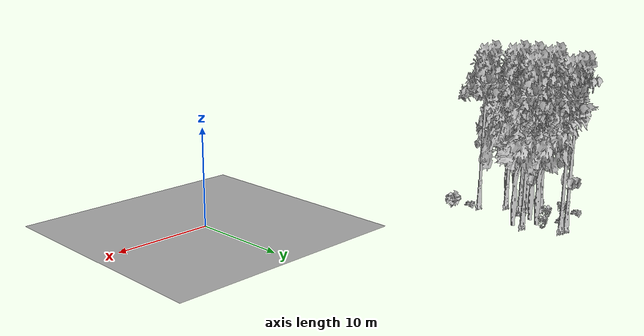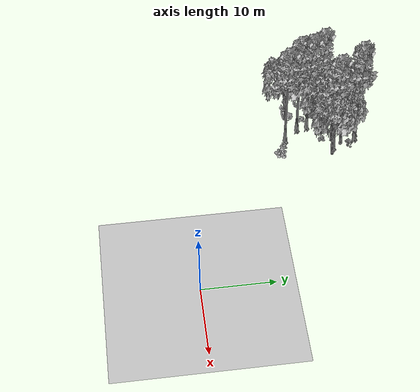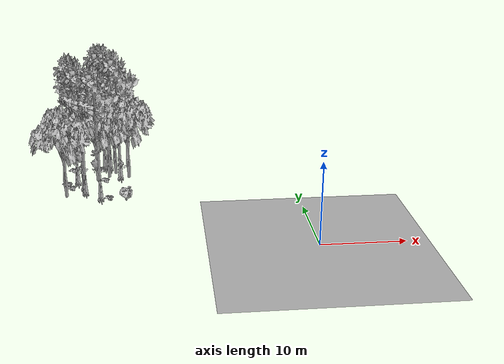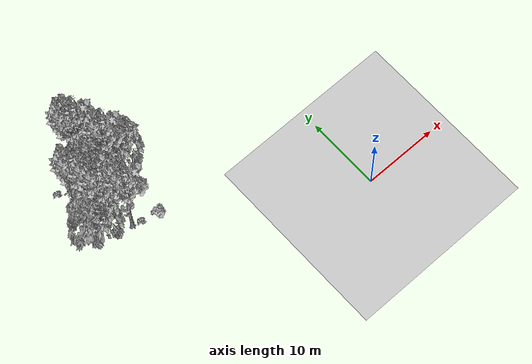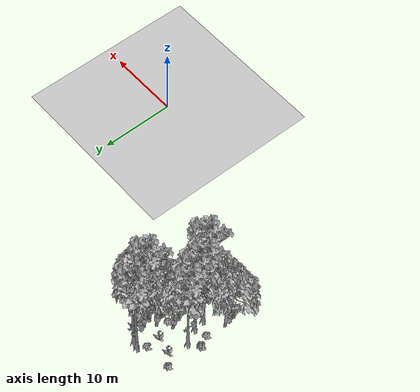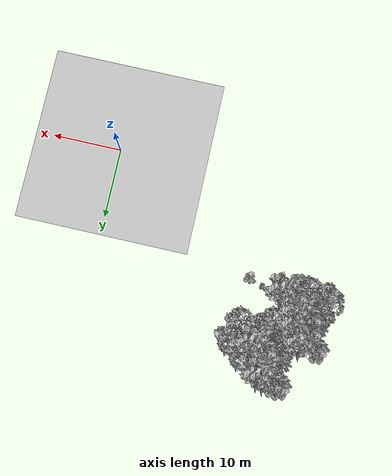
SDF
<sdf version="1.7">
 <world name="default">
  <model name="ground_plane">
   <static>1</static>
   <link name="link">
    <collision name="collision">
     <pose>-50 0 0 0 -0 0</pose>
     <geometry><plane><normal>0 0 1</normal><size>80 80</size></plane></geometry>
     <surface><contact><ode><min_depth>0.01</min_depth><max_vel>0</max_vel></ode></contact></surface>
    </collision>
    <visual name="grass">
     <cast_shadows>0</cast_shadows>
     <geometry>
      <mesh>
       <scale>0.46714285714285714 0.46714285714285714 0.1</scale>
       <uri>file://grass_plane/meshes/grass_plane.dae</uri>
      </mesh>
     </geometry>
    </visual>
   </link>
  </model>
  <model name="Tree 82">
   <static>1</static>
   <pose>-23.60000368284799 22.907310739466723 0 1.57079 -0 0</pose>
   <link name="link">
    <collision name="collision">
     <geometry><mesh><scale>3.5 5 3.5</scale><uri>model://tree_2/meshes/tree_2.obj</uri></mesh></geometry>
    </collision>
    <visual name="visual">
     <geometry><mesh><scale>3.5 5 3.5</scale><uri>model://tree_2/meshes/tree_2.obj</uri></mesh></geometry>
    </visual>
   </link>
  </model>
  <model name="Tree 83">
   <static>1</static>
   <pose>-27.52057354692682 18.612210531335556 0 1.57079 -0 0</pose>
   <link name="link">
    <collision name="collision">
     <geometry><mesh><scale>3.5 5 3.5</scale><uri>model://tree_9/meshes/tree_9.obj</uri></mesh></geometry>
    </collision>
    <visual name="visual">
     <geometry><mesh><scale>3.5 5 3.5</scale><uri>model://tree_9/meshes/tree_9.obj</uri></mesh></geometry>
    </visual>
   </link>
  </model>
  <model name="Tree 85">
   <static>1</static>
   <pose>-25.887990517821386 20.45984349056372 0 1.57079 -0 0</pose>
   <link name="link">
    <collision name="collision">
     <geometry><mesh><scale>3.5 5 3.5</scale><uri>model://tree_2/meshes/tree_2.obj</uri></mesh></geometry>
    </collision>
    <visual name="visual">
     <geometry><mesh><scale>3.5 5 3.5</scale><uri>model://tree_2/meshes/tree_2.obj</uri></mesh></geometry>
    </visual>
   </link>
  </model>
  <model name="Tree 149">
   <static>1</static>
   <pose>-28.477981547906218 20.479283312275328 0 1.57079 -0 0</pose>
   <link name="link">
    <collision name="collision">
     <geometry><mesh><scale>3.5 5 3.5</scale><uri>model://tree_9/meshes/tree_9.obj</uri></mesh></geometry>
    </collision>
    <visual name="visual">
     <geometry><mesh><scale>3.5 5 3.5</scale><uri>model://tree_9/meshes/tree_9.obj</uri></mesh></geometry>
    </visual>
   </link>
  </model>
  <model name="Tree 211">
   <static>1</static>
   <pose>-25.125109178131687 25.325307535147488 0 1.57079 -0 0</pose>
   <link name="link">
    <collision name="collision">
     <geometry><mesh><scale>3.5 5 3.5</scale><uri>model://tree_9/meshes/tree_9.obj</uri></mesh></geometry>
    </collision>
    <visual name="visual">
     <geometry><mesh><scale>3.5 5 3.5</scale><uri>model://tree_9/meshes/tree_9.obj</uri></mesh></geometry>
    </visual>
   </link>
  </model>
  <model name="Tree 218">
   <static>1</static>
   <pose>-29.566842134518858 15.620354133656498 0 1.57079 -0 0</pose>
   <link name="link">
    <collision name="collision">
     <geometry><mesh><scale>3.5 5 3.5</scale><uri>model://tree_2/meshes/tree_2.obj</uri></mesh></geometry>
    </collision>
    <visual name="visual">
     <geometry><mesh><scale>3.5 5 3.5</scale><uri>model://tree_2/meshes/tree_2.obj</uri></mesh></geometry>
    </visual>
   </link>
  </model>
  <model name="Tree 297">
   <static>1</static>
   <pose>-24.43351000046244 21.687650565385795 0 1.57079 -0 0</pose>
   <link name="link">
    <collision name="collision">
     <geometry><mesh><scale>3.5 5 3.5</scale><uri>model://tree_2/meshes/tree_2.obj</uri></mesh></geometry>
    </collision>
    <visual name="visual">
     <geometry><mesh><scale>3.5 5 3.5</scale><uri>model://tree_2/meshes/tree_2.obj</uri></mesh></geometry>
    </visual>
   </link>
  </model>
  <model name="Tree 323">
   <static>1</static>
   <pose>-25.161118192035325 15.060328880033758 0 1.57079 -0 0</pose>
   <link name="link">
    <collision name="collision">
     <geometry><mesh><scale>3.5 5 3.5</scale><uri>model://tree_9/meshes/tree_9.obj</uri></mesh></geometry>
    </collision>
    <visual name="visual">
     <geometry><mesh><scale>3.5 5 3.5</scale><uri>model://tree_9/meshes/tree_9.obj</uri></mesh></geometry>
    </visual>
   </link>
  </model>
  <model name="Tree 386">
   <static>1</static>
   <pose>-24.362458534090074 25.165617462280338 0 1.57079 -0 0</pose>
   <link name="link">
    <collision name="collision">
     <geometry><mesh><scale>3.5 5 3.5</scale><uri>model://tree_9/meshes/tree_9.obj</uri></mesh></geometry>
    </collision>
    <visual name="visual">
     <geometry><mesh><scale>3.5 5 3.5</scale><uri>model://tree_9/meshes/tree_9.obj</uri></mesh></geometry>
    </visual>
   </link>
  </model>
  <model name="Tree 395">
   <static>1</static>
   <pose>-21.789345784298405 21.354413079044562 0 1.57079 -0 0</pose>
   <link name="link">
    <collision name="collision">
     <geometry><mesh><scale>3.5 5 3.5</scale><uri>model://tree_2/meshes/tree_2.obj</uri></mesh></geometry>
    </collision>
    <visual name="visual">
     <geometry><mesh><scale>3.5 5 3.5</scale><uri>model://tree_2/meshes/tree_2.obj</uri></mesh></geometry>
    </visual>
   </link>
  </model>
  <model name="Tree 473">
   <static>1</static>
   <pose>-27.228537477405162 17.110829099585267 0 1.57079 -0 0</pose>
   <link name="link">
    <collision name="collision">
     <geometry><mesh><scale>3.5 5 3.5</scale><uri>model://tree_9/meshes/tree_9.obj</uri></mesh></geometry>
    </collision>
    <visual name="visual">
     <geometry><mesh><scale>3.5 5 3.5</scale><uri>model://tree_9/meshes/tree_9.obj</uri></mesh></geometry>
    </visual>
   </link>
  </model>
  <model name="Tree 536">
   <static>1</static>
   <pose>-22.869270382671104 21.76674939172741 0 1.57079 -0 0</pose>
   <link name="link">
    <collision name="collision">
     <geometry><mesh><scale>3.5 5 3.5</scale><uri>model://tree_9/meshes/tree_9.obj</uri></mesh></geometry>
    </collision>
    <visual name="visual">
     <geometry><mesh><scale>3.5 5 3.5</scale><uri>model://tree_9/meshes/tree_9.obj</uri></mesh></geometry>
    </visual>
   </link>
  </model>
  <model name="Bush 5">
   <static>1</static>
   <pose>-29.123226535051074 18.118331162031858 0 1.57079 -0 0</pose>
   <link name="link">
    <collision name="collision">
     <geometry><mesh><scale>2 2 2</scale><uri>model://bush_2/meshes/bush_2.obj</uri></mesh></geometry>
     <surface><contact><collide_without_contact>false</collide_without_contact></contact></surface>
    </collision>
    <visual name="visual">
     <geometry><mesh><scale>2 2 2</scale><uri>model://bush_2/meshes/bush_2.obj</uri></mesh></geometry>
    </visual>
   </link>
  </model>
  <model name="Bush 47">
   <static>1</static>
   <pose>-24.855161658986233 20.366902718795473 0 1.57079 -0 0</pose>
   <link name="link">
    <collision name="collision">
     <geometry><mesh><scale>2 2 2</scale><uri>model://bush_2/meshes/bush_2.obj</uri></mesh></geometry>
     <surface><contact><collide_without_contact>false</collide_without_contact></contact></surface>
    </collision>
    <visual name="visual">
     <geometry><mesh><scale>2 2 2</scale><uri>model://bush_2/meshes/bush_2.obj</uri></mesh></geometry>
    </visual>
   </link>
  </model>
  <model name="Bush 115">
   <static>1</static>
   <pose>-29.37981597840611 24.111767978246377 0 1.57079 -0 0</pose>
   <link name="link">
    <collision name="collision">
     <geometry><mesh><scale>2 2 2</scale><uri>model://bush_2/meshes/bush_2.obj</uri></mesh></geometry>
     <surface><contact><collide_without_contact>false</collide_without_contact></contact></surface>
    </collision>
    <visual name="visual">
     <geometry><mesh><scale>2 2 2</scale><uri>model://bush_2/meshes/bush_2.obj</uri></mesh></geometry>
    </visual>
   </link>
  </model>
  <model name="Bush 221">
   <static>1</static>
   <pose>-29.848842694121526 19.551725764273122 0 1.57079 -0 0</pose>
   <link name="link">
    <collision name="collision">
     <geometry><mesh><scale>2 2 2</scale><uri>model://bush_2/meshes/bush_2.obj</uri></mesh></geometry>
     <surface><contact><collide_without_contact>false</collide_without_contact></contact></surface>
    </collision>
    <visual name="visual">
     <geometry><mesh><scale>2 2 2</scale><uri>model://bush_2/meshes/bush_2.obj</uri></mesh></geometry>
    </visual>
   </link>
  </model>
  <model name="Bush 243">
   <static>1</static>
   <pose>-22.93052660546661 23.932132478037282 0 1.57079 -0 0</pose>
   <link name="link">
    <collision name="collision">
     <geometry><mesh><scale>2 2 2</scale><uri>model://bush_4/meshes/bush_4.obj</uri></mesh></geometry>
     <surface><contact><collide_without_contact>false</collide_without_contact></contact></surface>
    </collision>
    <visual name="visual">
     <geometry><mesh><scale>2 2 2</scale><uri>model://bush_4/meshes/bush_4.obj</uri></mesh></geometry>
    </visual>
   </link>
  </model>
  <model name="Bush 278">
   <static>1</static>
   <pose>-25.873745241042684 24.3346520411325 0 1.57079 -0 0</pose>
   <link name="link">
    <collision name="collision">
     <geometry><mesh><scale>2 2 2</scale><uri>model://bush_2/meshes/bush_2.obj</uri></mesh></geometry>
     <surface><contact><collide_without_contact>false</collide_without_contact></contact></surface>
    </collision>
    <visual name="visual">
     <geometry><mesh><scale>2 2 2</scale><uri>model://bush_2/meshes/bush_2.obj</uri></mesh></geometry>
    </visual>
   </link>
  </model>
  <model name="Bush 390">
   <static>1</static>
   <pose>-21.893555124475824 13.816300852309674 0 1.57079 -0 0</pose>
   <link name="link">
    <collision name="collision">
     <geometry><mesh><scale>2 2 2</scale><uri>model://bush_1/meshes/bush_1.obj</uri></mesh></geometry>
     <surface><contact><collide_without_contact>false</collide_without_contact></contact></surface>
    </collision>
    <visual name="visual">
     <geometry><mesh><scale>2 2 2</scale><uri>model://bush_1/meshes/bush_1.obj</uri></mesh></geometry>
    </visual>
   </link>
  </model>
  <model name="Bush 491">
   <static>1</static>
   <pose>-29.688374429699802 19.409092535407254 0 1.57079 -0 0</pose>
   <link name="link">
    <collision name="collision">
     <geometry><mesh><scale>2 2 2</scale><uri>model://bush_2/meshes/bush_2.obj</uri></mesh></geometry>
     <surface><contact><collide_without_contact>false</collide_without_contact></contact></surface>
    </collision>
    <visual name="visual">
     <geometry><mesh><scale>2 2 2</scale><uri>model://bush_2/meshes/bush_2.obj</uri></mesh></geometry>
    </visual>
   </link>
  </model>
  <model name="Bush 508">
   <static>1</static>
   <pose>-28.148660289830673 23.081853126985138 0 1.57079 -0 0</pose>
   <link name="link">
    <collision name="collision">
     <geometry><mesh><scale>2 2 2</scale><uri>model://bush_4/meshes/bush_4.obj</uri></mesh></geometry>
     <surface><contact><collide_without_contact>false</collide_without_contact></contact></surface>
    </collision>
    <visual name="visual">
     <geometry><mesh><scale>2 2 2</scale><uri>model://bush_4/meshes/bush_4.obj</uri></mesh></geometry>
    </visual>
   </link>
  </model>
  <model name="Bush 526">
   <static>1</static>
   <pose>-24.096642464494945 14.662261381831868 0 1.57079 -0 0</pose>
   <link name="link">
    <collision name="collision">
     <geometry><mesh><scale>2 2 2</scale><uri>model://bush_2/meshes/bush_2.obj</uri></mesh></geometry>
     <surface><contact><collide_without_contact>false</collide_without_contact></contact></surface>
    </collision>
    <visual name="visual">
     <geometry><mesh><scale>2 2 2</scale><uri>model://bush_2/meshes/bush_2.obj</uri></mesh></geometry>
    </visual>
   </link>
  </model>
  <model name="Bush 538">
   <static>1</static>
   <pose>-25.992667640940102 22.613158177903045 0 1.57079 -0 0</pose>
   <link name="link">
    <collision name="collision">
     <geometry><mesh><scale>2 2 2</scale><uri>model://bush_4/meshes/bush_4.obj</uri></mesh></geometry>
     <surface><contact><collide_without_contact>false</collide_without_contact></contact></surface>
    </collision>
    <visual name="visual">
     <geometry><mesh><scale>2 2 2</scale><uri>model://bush_4/meshes/bush_4.obj</uri></mesh></geometry>
    </visual>
   </link>
  </model>
 </world>
</sdf>
